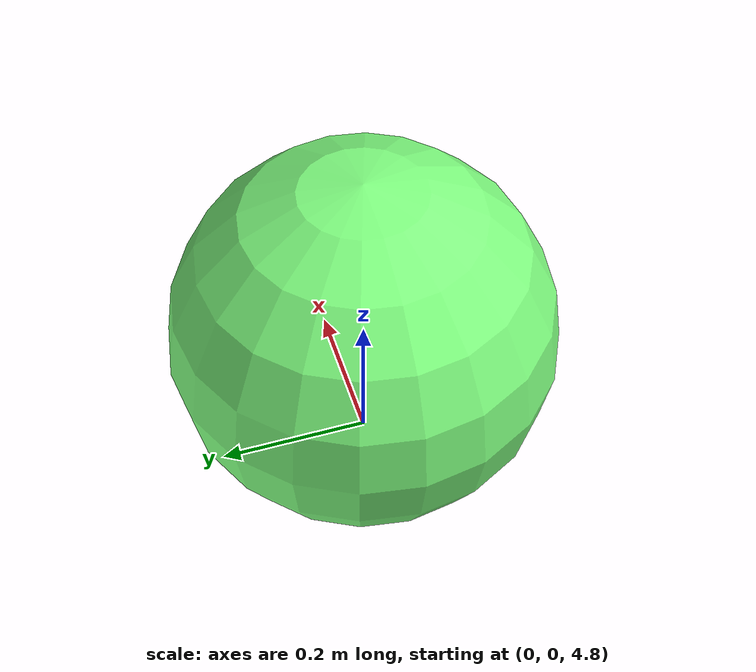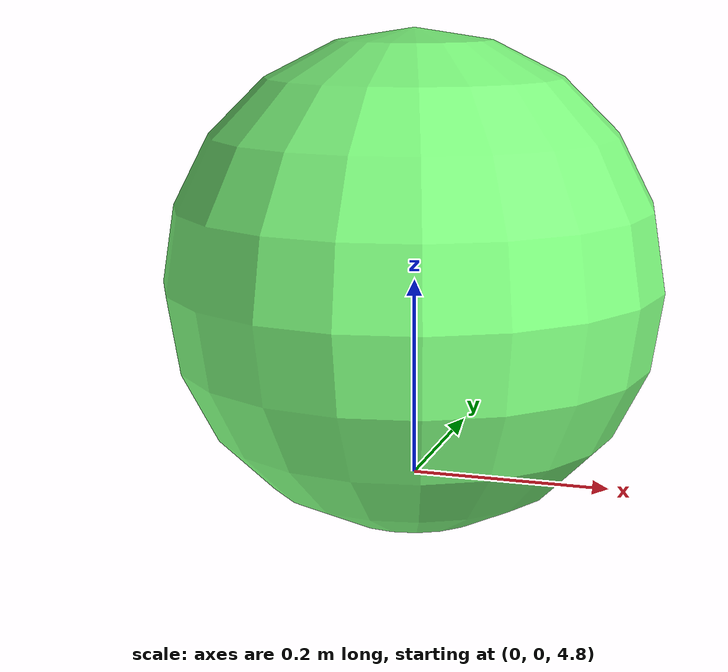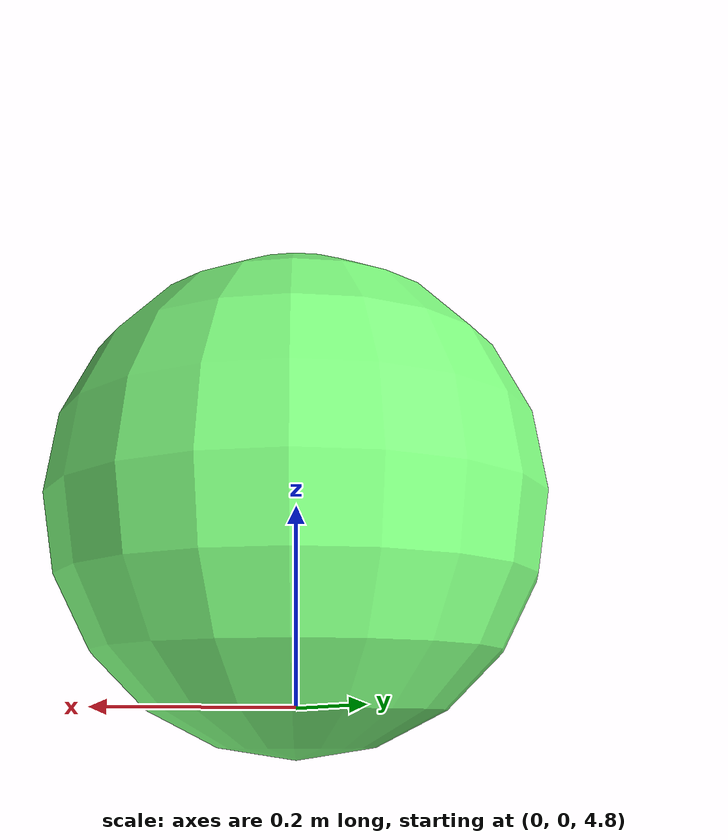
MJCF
<mujoco>
    <visual>
        <map force="0.1" zfar="30"/>
        <rgba haze="0.15 0.25 0.35 1"/>
        <global offwidth="2560" offheight="1440" elevation="-20" azimuth="120"/>
    </visual>
    <asset>
        <texture type="skybox" builtin="gradient" rgb1=".3 .5 .7" rgb2="0 0 0" width="32" height="512"/>
    </asset>
    <worldbody>
        <body>
            <geom type="plane" size="5 5 5" rgba="1 1 1 1"/>
        </body>
        <body>
            <freejoint/>
            <geom type="sphere" pos="0 0 5" size="0.25" rgba="0.5 1 0.5 1"/>
        </body>
    </worldbody>
</mujoco>
